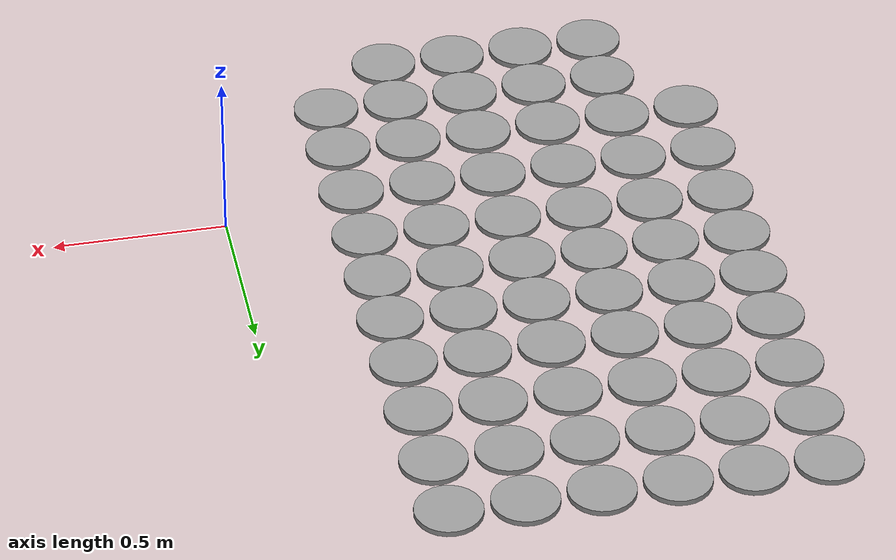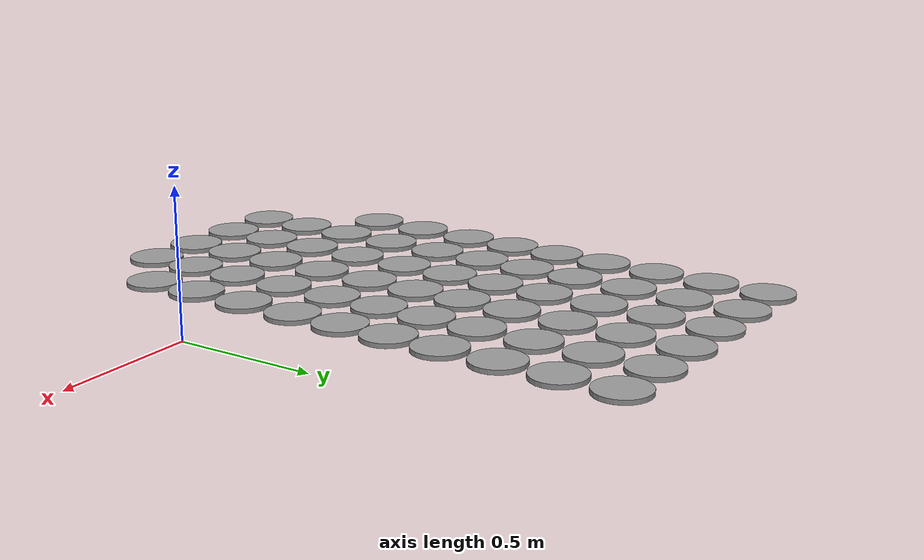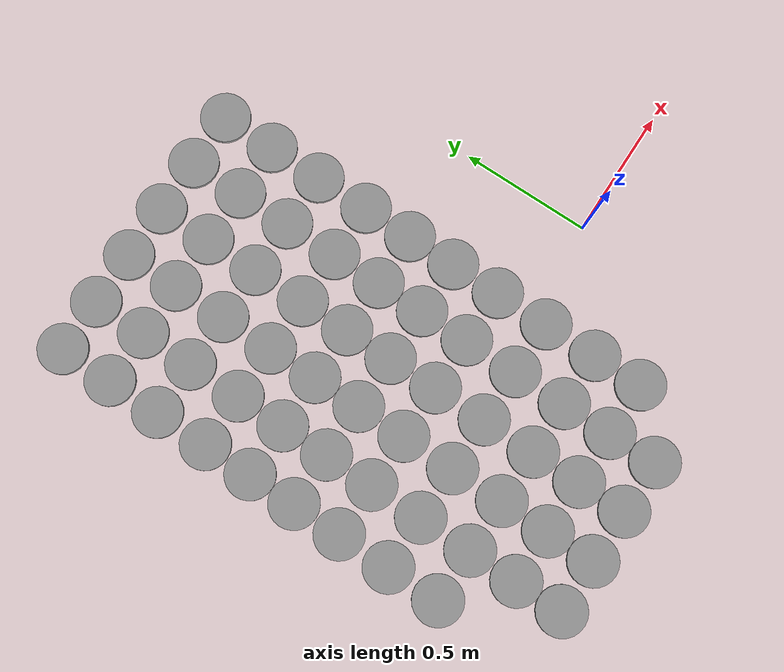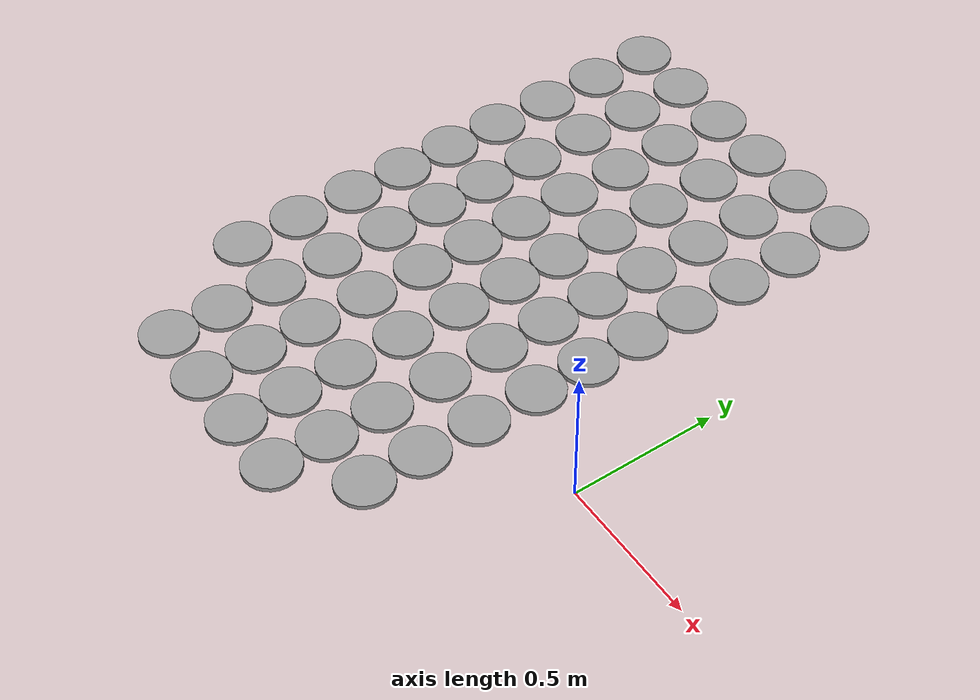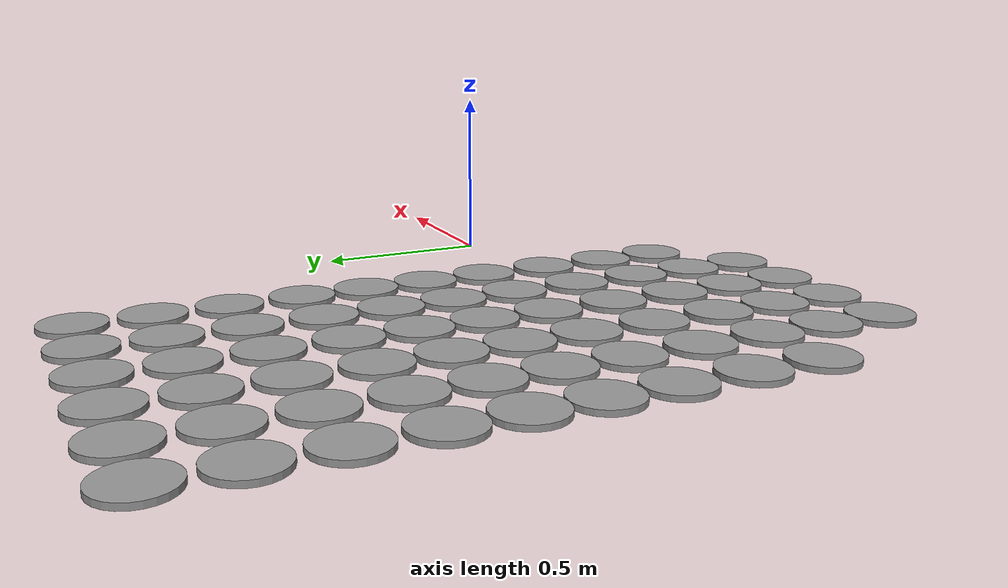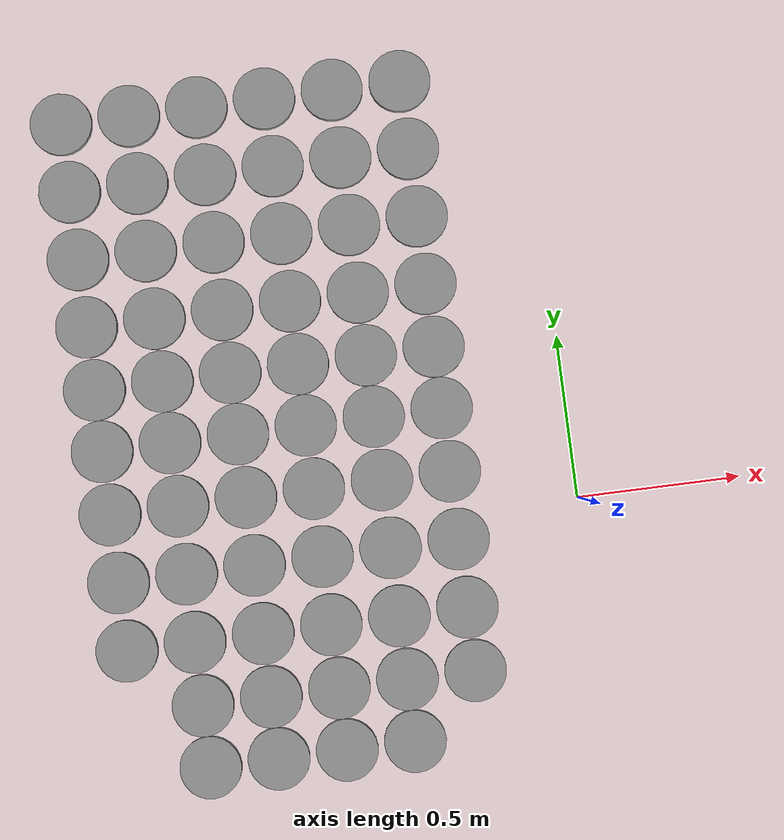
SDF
<sdf version="1.6">
 <world name="default">
  <model name="unit_cylinder_clone_85">
   <pose>-1.43 0.515077 0.008111 0 -0 0</pose>
   <link name="link">
    <inertial>
     <mass>1</mass>
     <inertia><ixx>0.145833</ixx><ixy>0</ixy><ixz>0</ixz><iyy>0.145833</iyy><iyz>0</iyz><izz>0.125</izz></inertia>
    </inertial>
    <collision name="collision">
     <geometry><cylinder><radius>0.0950718</radius><length>0.0162339</length></cylinder></geometry>
     <max_contacts>5</max_contacts>
    </collision>
    <visual name="visual">
     <geometry><cylinder><radius>0.0950718</radius><length>0.0162339</length></cylinder></geometry>
     <material>
      <script><name>Gazebo/Grey</name><uri>file://media/materials/scripts/gazebo.material</uri></script>
     </material>
    </visual>
   </link>
  </model>
  <model name="unit_cylinder_clone_86">
   <pose>-1.43 0.71 0.008111 0 -0 0</pose>
   <link name="link">
    <inertial>
     <mass>1</mass>
     <inertia><ixx>0.145833</ixx><ixy>0</ixy><ixz>0</ixz><iyy>0.145833</iyy><iyz>0</iyz><izz>0.125</izz></inertia>
    </inertial>
    <collision name="collision">
     <geometry><cylinder><radius>0.0950718</radius><length>0.0162339</length></cylinder></geometry>
     <max_contacts>5</max_contacts>
    </collision>
    <visual name="visual">
     <geometry><cylinder><radius>0.0950718</radius><length>0.0162339</length></cylinder></geometry>
     <material>
      <script><name>Gazebo/Grey</name><uri>file://media/materials/scripts/gazebo.material</uri></script>
     </material>
    </visual>
   </link>
  </model>
  <model name="unit_cylinder_clone_87">
   <pose>-1.43 0.92 0.008111 0 -0 0</pose>
   <link name="link">
    <inertial>
     <mass>1</mass>
     <inertia><ixx>0.145833</ixx><ixy>0</ixy><ixz>0</ixz><iyy>0.145833</iyy><iyz>0</iyz><izz>0.125</izz></inertia>
    </inertial>
    <collision name="collision">
     <geometry><cylinder><radius>0.0950718</radius><length>0.0162339</length></cylinder></geometry>
     <max_contacts>5</max_contacts>
    </collision>
    <visual name="visual">
     <geometry><cylinder><radius>0.0950718</radius><length>0.0162339</length></cylinder></geometry>
     <material>
      <script><name>Gazebo/Grey</name><uri>file://media/materials/scripts/gazebo.material</uri></script>
     </material>
    </visual>
   </link>
  </model>
  <model name="unit_cylinder_clone_88">
   <pose>-1.43 1.13 0.008111 0 -0 0</pose>
   <link name="link">
    <inertial>
     <mass>1</mass>
     <inertia><ixx>0.145833</ixx><ixy>0</ixy><ixz>0</ixz><iyy>0.145833</iyy><iyz>0</iyz><izz>0.125</izz></inertia>
    </inertial>
    <collision name="collision">
     <geometry><cylinder><radius>0.0950718</radius><length>0.0162339</length></cylinder></geometry>
     <max_contacts>5</max_contacts>
    </collision>
    <visual name="visual">
     <geometry><cylinder><radius>0.0950718</radius><length>0.0162339</length></cylinder></geometry>
     <material>
      <script><name>Gazebo/Grey</name><uri>file://media/materials/scripts/gazebo.material</uri></script>
     </material>
    </visual>
   </link>
  </model>
  <model name="unit_cylinder_clone_89">
   <pose>-1.43 1.34 0.008111 0 -0 0</pose>
   <link name="link">
    <inertial>
     <mass>1</mass>
     <inertia><ixx>0.145833</ixx><ixy>0</ixy><ixz>0</ixz><iyy>0.145833</iyy><iyz>0</iyz><izz>0.125</izz></inertia>
    </inertial>
    <collision name="collision">
     <geometry><cylinder><radius>0.0950718</radius><length>0.0162339</length></cylinder></geometry>
     <max_contacts>5</max_contacts>
    </collision>
    <visual name="visual">
     <geometry><cylinder><radius>0.0950718</radius><length>0.0162339</length></cylinder></geometry>
     <material>
      <script><name>Gazebo/Grey</name><uri>file://media/materials/scripts/gazebo.material</uri></script>
     </material>
    </visual>
   </link>
  </model>
  <model name="unit_cylinder_clone_90">
   <pose>-1.22 0.515077 0.008111 0 -0 0</pose>
   <link name="link">
    <inertial>
     <mass>1</mass>
     <inertia><ixx>0.145833</ixx><ixy>0</ixy><ixz>0</ixz><iyy>0.145833</iyy><iyz>0</iyz><izz>0.125</izz></inertia>
    </inertial>
    <collision name="collision">
     <geometry><cylinder><radius>0.0950718</radius><length>0.0162339</length></cylinder></geometry>
     <max_contacts>5</max_contacts>
    </collision>
    <visual name="visual">
     <geometry><cylinder><radius>0.0950718</radius><length>0.0162339</length></cylinder></geometry>
     <material>
      <script><name>Gazebo/Grey</name><uri>file://media/materials/scripts/gazebo.material</uri></script>
     </material>
    </visual>
   </link>
  </model>
  <model name="unit_cylinder_clone_91">
   <pose>-1.22 0.71 0.008111 0 -0 0</pose>
   <link name="link">
    <inertial>
     <mass>1</mass>
     <inertia><ixx>0.145833</ixx><ixy>0</ixy><ixz>0</ixz><iyy>0.145833</iyy><iyz>0</iyz><izz>0.125</izz></inertia>
    </inertial>
    <collision name="collision">
     <geometry><cylinder><radius>0.0950718</radius><length>0.0162339</length></cylinder></geometry>
     <max_contacts>5</max_contacts>
    </collision>
    <visual name="visual">
     <geometry><cylinder><radius>0.0950718</radius><length>0.0162339</length></cylinder></geometry>
     <material>
      <script><name>Gazebo/Grey</name><uri>file://media/materials/scripts/gazebo.material</uri></script>
     </material>
    </visual>
   </link>
  </model>
  <model name="unit_cylinder_clone_92">
   <pose>-1.22 0.92 0.008111 0 -0 0</pose>
   <link name="link">
    <inertial>
     <mass>1</mass>
     <inertia><ixx>0.145833</ixx><ixy>0</ixy><ixz>0</ixz><iyy>0.145833</iyy><iyz>0</iyz><izz>0.125</izz></inertia>
    </inertial>
    <collision name="collision">
     <geometry><cylinder><radius>0.0950718</radius><length>0.0162339</length></cylinder></geometry>
     <max_contacts>5</max_contacts>
    </collision>
    <visual name="visual">
     <geometry><cylinder><radius>0.0950718</radius><length>0.0162339</length></cylinder></geometry>
     <material>
      <script><name>Gazebo/Grey</name><uri>file://media/materials/scripts/gazebo.material</uri></script>
     </material>
    </visual>
   </link>
  </model>
  <model name="unit_cylinder_clone_93">
   <pose>-1.22 1.13 0.008111 0 -0 0</pose>
   <link name="link">
    <inertial>
     <mass>1</mass>
     <inertia><ixx>0.145833</ixx><ixy>0</ixy><ixz>0</ixz><iyy>0.145833</iyy><iyz>0</iyz><izz>0.125</izz></inertia>
    </inertial>
    <collision name="collision">
     <geometry><cylinder><radius>0.0950718</radius><length>0.0162339</length></cylinder></geometry>
     <max_contacts>5</max_contacts>
    </collision>
    <visual name="visual">
     <geometry><cylinder><radius>0.0950718</radius><length>0.0162339</length></cylinder></geometry>
     <material>
      <script><name>Gazebo/Grey</name><uri>file://media/materials/scripts/gazebo.material</uri></script>
     </material>
    </visual>
   </link>
  </model>
  <model name="unit_cylinder_clone_94">
   <pose>-1.22 1.34 0.008111 0 -0 0</pose>
   <link name="link">
    <inertial>
     <mass>1</mass>
     <inertia><ixx>0.145833</ixx><ixy>0</ixy><ixz>0</ixz><iyy>0.145833</iyy><iyz>0</iyz><izz>0.125</izz></inertia>
    </inertial>
    <collision name="collision">
     <geometry><cylinder><radius>0.0950718</radius><length>0.0162339</length></cylinder></geometry>
     <max_contacts>5</max_contacts>
    </collision>
    <visual name="visual">
     <geometry><cylinder><radius>0.0950718</radius><length>0.0162339</length></cylinder></geometry>
     <material>
      <script><name>Gazebo/Grey</name><uri>file://media/materials/scripts/gazebo.material</uri></script>
     </material>
    </visual>
   </link>
  </model>
  <model name="unit_cylinder_clone_95">
   <pose>-1.01 0.515077 0.008111 0 -0 0</pose>
   <link name="link">
    <inertial>
     <mass>1</mass>
     <inertia><ixx>0.145833</ixx><ixy>0</ixy><ixz>0</ixz><iyy>0.145833</iyy><iyz>0</iyz><izz>0.125</izz></inertia>
    </inertial>
    <collision name="collision">
     <geometry><cylinder><radius>0.0950718</radius><length>0.0162339</length></cylinder></geometry>
     <max_contacts>5</max_contacts>
    </collision>
    <visual name="visual">
     <geometry><cylinder><radius>0.0950718</radius><length>0.0162339</length></cylinder></geometry>
     <material>
      <script><name>Gazebo/Grey</name><uri>file://media/materials/scripts/gazebo.material</uri></script>
     </material>
    </visual>
   </link>
  </model>
  <model name="unit_cylinder_clone_96">
   <pose>-1.01 0.71 0.008111 0 -0 0</pose>
   <link name="link">
    <inertial>
     <mass>1</mass>
     <inertia><ixx>0.145833</ixx><ixy>0</ixy><ixz>0</ixz><iyy>0.145833</iyy><iyz>0</iyz><izz>0.125</izz></inertia>
    </inertial>
    <collision name="collision">
     <geometry><cylinder><radius>0.0950718</radius><length>0.0162339</length></cylinder></geometry>
     <max_contacts>5</max_contacts>
    </collision>
    <visual name="visual">
     <geometry><cylinder><radius>0.0950718</radius><length>0.0162339</length></cylinder></geometry>
     <material>
      <script><name>Gazebo/Grey</name><uri>file://media/materials/scripts/gazebo.material</uri></script>
     </material>
    </visual>
   </link>
  </model>
  <model name="unit_cylinder_clone_97">
   <pose>-1.01 0.92 0.008111 0 -0 0</pose>
   <link name="link">
    <inertial>
     <mass>1</mass>
     <inertia><ixx>0.145833</ixx><ixy>0</ixy><ixz>0</ixz><iyy>0.145833</iyy><iyz>0</iyz><izz>0.125</izz></inertia>
    </inertial>
    <collision name="collision">
     <geometry><cylinder><radius>0.0950718</radius><length>0.0162339</length></cylinder></geometry>
     <max_contacts>5</max_contacts>
    </collision>
    <visual name="visual">
     <geometry><cylinder><radius>0.0950718</radius><length>0.0162339</length></cylinder></geometry>
     <material>
      <script><name>Gazebo/Grey</name><uri>file://media/materials/scripts/gazebo.material</uri></script>
     </material>
    </visual>
   </link>
  </model>
  <model name="unit_cylinder_clone_98">
   <pose>-1.01 1.13 0.008111 0 -0 0</pose>
   <link name="link">
    <inertial>
     <mass>1</mass>
     <inertia><ixx>0.145833</ixx><ixy>0</ixy><ixz>0</ixz><iyy>0.145833</iyy><iyz>0</iyz><izz>0.125</izz></inertia>
    </inertial>
    <collision name="collision">
     <geometry><cylinder><radius>0.0950718</radius><length>0.0162339</length></cylinder></geometry>
     <max_contacts>5</max_contacts>
    </collision>
    <visual name="visual">
     <geometry><cylinder><radius>0.0950718</radius><length>0.0162339</length></cylinder></geometry>
     <material>
      <script><name>Gazebo/Grey</name><uri>file://media/materials/scripts/gazebo.material</uri></script>
     </material>
    </visual>
   </link>
  </model>
  <model name="unit_cylinder_clone_99">
   <pose>-1.01 1.34 0.008111 0 -0 0</pose>
   <link name="link">
    <inertial>
     <mass>1</mass>
     <inertia><ixx>0.145833</ixx><ixy>0</ixy><ixz>0</ixz><iyy>0.145833</iyy><iyz>0</iyz><izz>0.125</izz></inertia>
    </inertial>
    <collision name="collision">
     <geometry><cylinder><radius>0.0950718</radius><length>0.0162339</length></cylinder></geometry>
     <max_contacts>5</max_contacts>
    </collision>
    <visual name="visual">
     <geometry><cylinder><radius>0.0950718</radius><length>0.0162339</length></cylinder></geometry>
     <material>
      <script><name>Gazebo/Grey</name><uri>file://media/materials/scripts/gazebo.material</uri></script>
     </material>
    </visual>
   </link>
  </model>
  <model name="unit_cylinder_clone_100">
   <pose>-0.8 0.515077 0.008111 0 -0 0</pose>
   <link name="link">
    <inertial>
     <mass>1</mass>
     <inertia><ixx>0.145833</ixx><ixy>0</ixy><ixz>0</ixz><iyy>0.145833</iyy><iyz>0</iyz><izz>0.125</izz></inertia>
    </inertial>
    <collision name="collision">
     <geometry><cylinder><radius>0.0950718</radius><length>0.0162339</length></cylinder></geometry>
     <max_contacts>5</max_contacts>
    </collision>
    <visual name="visual">
     <geometry><cylinder><radius>0.0950718</radius><length>0.0162339</length></cylinder></geometry>
     <material>
      <script><name>Gazebo/Grey</name><uri>file://media/materials/scripts/gazebo.material</uri></script>
     </material>
    </visual>
   </link>
  </model>
  <model name="unit_cylinder_clone_101">
   <pose>-0.8 0.71 0.008111 0 -0 0</pose>
   <link name="link">
    <inertial>
     <mass>1</mass>
     <inertia><ixx>0.145833</ixx><ixy>0</ixy><ixz>0</ixz><iyy>0.145833</iyy><iyz>0</iyz><izz>0.125</izz></inertia>
    </inertial>
    <collision name="collision">
     <geometry><cylinder><radius>0.0950718</radius><length>0.0162339</length></cylinder></geometry>
     <max_contacts>5</max_contacts>
    </collision>
    <visual name="visual">
     <geometry><cylinder><radius>0.0950718</radius><length>0.0162339</length></cylinder></geometry>
     <material>
      <script><name>Gazebo/Grey</name><uri>file://media/materials/scripts/gazebo.material</uri></script>
     </material>
    </visual>
   </link>
  </model>
  <model name="unit_cylinder_clone_102">
   <pose>-0.8 0.92 0.008111 0 -0 0</pose>
   <link name="link">
    <inertial>
     <mass>1</mass>
     <inertia><ixx>0.145833</ixx><ixy>0</ixy><ixz>0</ixz><iyy>0.145833</iyy><iyz>0</iyz><izz>0.125</izz></inertia>
    </inertial>
    <collision name="collision">
     <geometry><cylinder><radius>0.0950718</radius><length>0.0162339</length></cylinder></geometry>
     <max_contacts>5</max_contacts>
    </collision>
    <visual name="visual">
     <geometry><cylinder><radius>0.0950718</radius><length>0.0162339</length></cylinder></geometry>
     <material>
      <script><name>Gazebo/Grey</name><uri>file://media/materials/scripts/gazebo.material</uri></script>
     </material>
    </visual>
   </link>
  </model>
  <model name="unit_cylinder_clone_103">
   <pose>-0.8 1.13 0.008111 0 -0 0</pose>
   <link name="link">
    <inertial>
     <mass>1</mass>
     <inertia><ixx>0.145833</ixx><ixy>0</ixy><ixz>0</ixz><iyy>0.145833</iyy><iyz>0</iyz><izz>0.125</izz></inertia>
    </inertial>
    <collision name="collision">
     <geometry><cylinder><radius>0.0950718</radius><length>0.0162339</length></cylinder></geometry>
     <max_contacts>5</max_contacts>
    </collision>
    <visual name="visual">
     <geometry><cylinder><radius>0.0950718</radius><length>0.0162339</length></cylinder></geometry>
     <material>
      <script><name>Gazebo/Grey</name><uri>file://media/materials/scripts/gazebo.material</uri></script>
     </material>
    </visual>
   </link>
  </model>
  <model name="unit_cylinder_clone_104">
   <pose>-0.8 1.34 0.008111 0 -0 0</pose>
   <link name="link">
    <inertial>
     <mass>1</mass>
     <inertia><ixx>0.145833</ixx><ixy>0</ixy><ixz>0</ixz><iyy>0.145833</iyy><iyz>0</iyz><izz>0.125</izz></inertia>
    </inertial>
    <collision name="collision">
     <geometry><cylinder><radius>0.0950718</radius><length>0.0162339</length></cylinder></geometry>
     <max_contacts>5</max_contacts>
    </collision>
    <visual name="visual">
     <geometry><cylinder><radius>0.0950718</radius><length>0.0162339</length></cylinder></geometry>
     <material>
      <script><name>Gazebo/Grey</name><uri>file://media/materials/scripts/gazebo.material</uri></script>
     </material>
    </visual>
   </link>
  </model>
  <model name="unit_cylinder_clone_105">
   <pose>-0.59 0.515077 0.008111 0 -0 0</pose>
   <link name="link">
    <inertial>
     <mass>1</mass>
     <inertia><ixx>0.145833</ixx><ixy>0</ixy><ixz>0</ixz><iyy>0.145833</iyy><iyz>0</iyz><izz>0.125</izz></inertia>
    </inertial>
    <collision name="collision">
     <geometry><cylinder><radius>0.0950718</radius><length>0.0162339</length></cylinder></geometry>
     <max_contacts>5</max_contacts>
    </collision>
    <visual name="visual">
     <geometry><cylinder><radius>0.0950718</radius><length>0.0162339</length></cylinder></geometry>
     <material>
      <script><name>Gazebo/Grey</name><uri>file://media/materials/scripts/gazebo.material</uri></script>
     </material>
    </visual>
   </link>
  </model>
  <model name="unit_cylinder_clone_106">
   <pose>-0.59 0.71 0.008111 0 -0 0</pose>
   <link name="link">
    <inertial>
     <mass>1</mass>
     <inertia><ixx>0.145833</ixx><ixy>0</ixy><ixz>0</ixz><iyy>0.145833</iyy><iyz>0</iyz><izz>0.125</izz></inertia>
    </inertial>
    <collision name="collision">
     <geometry><cylinder><radius>0.0950718</radius><length>0.0162339</length></cylinder></geometry>
     <max_contacts>5</max_contacts>
    </collision>
    <visual name="visual">
     <geometry><cylinder><radius>0.0950718</radius><length>0.0162339</length></cylinder></geometry>
     <material>
      <script><name>Gazebo/Grey</name><uri>file://media/materials/scripts/gazebo.material</uri></script>
     </material>
    </visual>
   </link>
  </model>
  <model name="unit_cylinder_clone_107">
   <pose>-0.59 0.92 0.008111 0 -0 0</pose>
   <link name="link">
    <inertial>
     <mass>1</mass>
     <inertia><ixx>0.145833</ixx><ixy>0</ixy><ixz>0</ixz><iyy>0.145833</iyy><iyz>0</iyz><izz>0.125</izz></inertia>
    </inertial>
    <collision name="collision">
     <geometry><cylinder><radius>0.0950718</radius><length>0.0162339</length></cylinder></geometry>
     <max_contacts>5</max_contacts>
    </collision>
    <visual name="visual">
     <geometry><cylinder><radius>0.0950718</radius><length>0.0162339</length></cylinder></geometry>
     <material>
      <script><name>Gazebo/Grey</name><uri>file://media/materials/scripts/gazebo.material</uri></script>
     </material>
    </visual>
   </link>
  </model>
  <model name="unit_cylinder_clone_108">
   <pose>-0.59 1.13 0.008111 0 -0 0</pose>
   <link name="link">
    <inertial>
     <mass>1</mass>
     <inertia><ixx>0.145833</ixx><ixy>0</ixy><ixz>0</ixz><iyy>0.145833</iyy><iyz>0</iyz><izz>0.125</izz></inertia>
    </inertial>
    <collision name="collision">
     <geometry><cylinder><radius>0.0950718</radius><length>0.0162339</length></cylinder></geometry>
     <max_contacts>5</max_contacts>
    </collision>
    <visual name="visual">
     <geometry><cylinder><radius>0.0950718</radius><length>0.0162339</length></cylinder></geometry>
     <material>
      <script><name>Gazebo/Grey</name><uri>file://media/materials/scripts/gazebo.material</uri></script>
     </material>
    </visual>
   </link>
  </model>
  <model name="unit_cylinder_clone_109">
   <pose>-0.59 1.34 0.008111 0 -0 0</pose>
   <link name="link">
    <inertial>
     <mass>1</mass>
     <inertia><ixx>0.145833</ixx><ixy>0</ixy><ixz>0</ixz><iyy>0.145833</iyy><iyz>0</iyz><izz>0.125</izz></inertia>
    </inertial>
    <collision name="collision">
     <geometry><cylinder><radius>0.0950718</radius><length>0.0162339</length></cylinder></geometry>
     <max_contacts>5</max_contacts>
    </collision>
    <visual name="visual">
     <geometry><cylinder><radius>0.0950718</radius><length>0.0162339</length></cylinder></geometry>
     <material>
      <script><name>Gazebo/Grey</name><uri>file://media/materials/scripts/gazebo.material</uri></script>
     </material>
    </visual>
   </link>
  </model>
  <model name="unit_cylinder_clone_110">
   <pose>-0.38 0.515077 0.008111 0 -0 0</pose>
   <link name="link">
    <inertial>
     <mass>1</mass>
     <inertia><ixx>0.145833</ixx><ixy>0</ixy><ixz>0</ixz><iyy>0.145833</iyy><iyz>0</iyz><izz>0.125</izz></inertia>
    </inertial>
    <collision name="collision">
     <geometry><cylinder><radius>0.0950718</radius><length>0.0162339</length></cylinder></geometry>
     <max_contacts>5</max_contacts>
    </collision>
    <visual name="visual">
     <geometry><cylinder><radius>0.0950718</radius><length>0.0162339</length></cylinder></geometry>
     <material>
      <script><name>Gazebo/Grey</name><uri>file://media/materials/scripts/gazebo.material</uri></script>
     </material>
    </visual>
   </link>
  </model>
  <model name="unit_cylinder_clone_111">
   <pose>-0.38 0.71 0.008111 0 -0 0</pose>
   <link name="link">
    <inertial>
     <mass>1</mass>
     <inertia><ixx>0.145833</ixx><ixy>0</ixy><ixz>0</ixz><iyy>0.145833</iyy><iyz>0</iyz><izz>0.125</izz></inertia>
    </inertial>
    <collision name="collision">
     <geometry><cylinder><radius>0.0950718</radius><length>0.0162339</length></cylinder></geometry>
     <max_contacts>5</max_contacts>
    </collision>
    <visual name="visual">
     <geometry><cylinder><radius>0.0950718</radius><length>0.0162339</length></cylinder></geometry>
     <material>
      <script><name>Gazebo/Grey</name><uri>file://media/materials/scripts/gazebo.material</uri></script>
     </material>
    </visual>
   </link>
  </model>
  <model name="unit_cylinder_clone_112">
   <pose>-0.38 0.92 0.008111 0 -0 0</pose>
   <link name="link">
    <inertial>
     <mass>1</mass>
     <inertia><ixx>0.145833</ixx><ixy>0</ixy><ixz>0</ixz><iyy>0.145833</iyy><iyz>0</iyz><izz>0.125</izz></inertia>
    </inertial>
    <collision name="collision">
     <geometry><cylinder><radius>0.0950718</radius><length>0.0162339</length></cylinder></geometry>
     <max_contacts>5</max_contacts>
    </collision>
    <visual name="visual">
     <geometry><cylinder><radius>0.0950718</radius><length>0.0162339</length></cylinder></geometry>
     <material>
      <script><name>Gazebo/Grey</name><uri>file://media/materials/scripts/gazebo.material</uri></script>
     </material>
    </visual>
   </link>
  </model>
  <model name="unit_cylinder_clone_113">
   <pose>-0.38 1.13 0.008111 0 -0 0</pose>
   <link name="link">
    <inertial>
     <mass>1</mass>
     <inertia><ixx>0.145833</ixx><ixy>0</ixy><ixz>0</ixz><iyy>0.145833</iyy><iyz>0</iyz><izz>0.125</izz></inertia>
    </inertial>
    <collision name="collision">
     <geometry><cylinder><radius>0.0950718</radius><length>0.0162339</length></cylinder></geometry>
     <max_contacts>5</max_contacts>
    </collision>
    <visual name="visual">
     <geometry><cylinder><radius>0.0950718</radius><length>0.0162339</length></cylinder></geometry>
     <material>
      <script><name>Gazebo/Grey</name><uri>file://media/materials/scripts/gazebo.material</uri></script>
     </material>
    </visual>
   </link>
  </model>
  <model name="unit_cylinder_clone_114">
   <pose>-0.38 1.34 0.008111 0 -0 0</pose>
   <link name="link">
    <inertial>
     <mass>1</mass>
     <inertia><ixx>0.145833</ixx><ixy>0</ixy><ixz>0</ixz><iyy>0.145833</iyy><iyz>0</iyz><izz>0.125</izz></inertia>
    </inertial>
    <collision name="collision">
     <geometry><cylinder><radius>0.0950718</radius><length>0.0162339</length></cylinder></geometry>
     <max_contacts>5</max_contacts>
    </collision>
    <visual name="visual">
     <geometry><cylinder><radius>0.0950718</radius><length>0.0162339</length></cylinder></geometry>
     <material>
      <script><name>Gazebo/Grey</name><uri>file://media/materials/scripts/gazebo.material</uri></script>
     </material>
    </visual>
   </link>
  </model>
  <model name="unit_cylinder_clone_336">
   <pose>-1.43 -0.29 0.008111 0 -0 0</pose>
   <link name="link">
    <inertial>
     <mass>1</mass>
     <inertia><ixx>0.145833</ixx><ixy>0</ixy><ixz>0</ixz><iyy>0.145833</iyy><iyz>0</iyz><izz>0.125</izz></inertia>
    </inertial>
    <collision name="collision">
     <geometry><cylinder><radius>0.0950718</radius><length>0.0162339</length></cylinder></geometry>
     <max_contacts>5</max_contacts>
    </collision>
    <visual name="visual">
     <geometry><cylinder><radius>0.0950718</radius><length>0.0162339</length></cylinder></geometry>
     <material>
      <script><name>Gazebo/Grey</name><uri>file://media/materials/scripts/gazebo.material</uri></script>
     </material>
    </visual>
   </link>
  </model>
  <model name="unit_cylinder_clone_337">
   <pose>-1.43 -0.08 0.008111 0 -0 0</pose>
   <link name="link">
    <inertial>
     <mass>1</mass>
     <inertia><ixx>0.145833</ixx><ixy>0</ixy><ixz>0</ixz><iyy>0.145833</iyy><iyz>0</iyz><izz>0.125</izz></inertia>
    </inertial>
    <collision name="collision">
     <geometry><cylinder><radius>0.0950718</radius><length>0.0162339</length></cylinder></geometry>
     <max_contacts>5</max_contacts>
    </collision>
    <visual name="visual">
     <geometry><cylinder><radius>0.0950718</radius><length>0.0162339</length></cylinder></geometry>
     <material>
      <script><name>Gazebo/Grey</name><uri>file://media/materials/scripts/gazebo.material</uri></script>
     </material>
    </visual>
   </link>
  </model>
  <model name="unit_cylinder_clone_338">
   <pose>-1.43 0.13 0.008111 0 -0 0</pose>
   <link name="link">
    <inertial>
     <mass>1</mass>
     <inertia><ixx>0.145833</ixx><ixy>0</ixy><ixz>0</ixz><iyy>0.145833</iyy><iyz>0</iyz><izz>0.125</izz></inertia>
    </inertial>
    <collision name="collision">
     <geometry><cylinder><radius>0.0950718</radius><length>0.0162339</length></cylinder></geometry>
     <max_contacts>5</max_contacts>
    </collision>
    <visual name="visual">
     <geometry><cylinder><radius>0.0950718</radius><length>0.0162339</length></cylinder></geometry>
     <material>
      <script><name>Gazebo/Grey</name><uri>file://media/materials/scripts/gazebo.material</uri></script>
     </material>
    </visual>
   </link>
  </model>
  <model name="unit_cylinder_clone_339">
   <pose>-1.43 0.324923 0.008111 0 -0 0</pose>
   <link name="link">
    <inertial>
     <mass>1</mass>
     <inertia><ixx>0.145833</ixx><ixy>0</ixy><ixz>0</ixz><iyy>0.145833</iyy><iyz>0</iyz><izz>0.125</izz></inertia>
    </inertial>
    <collision name="collision">
     <geometry><cylinder><radius>0.0950718</radius><length>0.0162339</length></cylinder></geometry>
     <max_contacts>5</max_contacts>
    </collision>
    <visual name="visual">
     <geometry><cylinder><radius>0.0950718</radius><length>0.0162339</length></cylinder></geometry>
     <material>
      <script><name>Gazebo/Grey</name><uri>file://media/materials/scripts/gazebo.material</uri></script>
     </material>
    </visual>
   </link>
  </model>
  <model name="unit_cylinder_clone_340">
   <pose>-1.22 -0.484923 0.008111 0 -0 0</pose>
   <link name="link">
    <inertial>
     <mass>1</mass>
     <inertia><ixx>0.145833</ixx><ixy>0</ixy><ixz>0</ixz><iyy>0.145833</iyy><iyz>0</iyz><izz>0.125</izz></inertia>
    </inertial>
    <collision name="collision">
     <geometry><cylinder><radius>0.0950718</radius><length>0.0162339</length></cylinder></geometry>
     <max_contacts>5</max_contacts>
    </collision>
    <visual name="visual">
     <geometry><cylinder><radius>0.0950718</radius><length>0.0162339</length></cylinder></geometry>
     <material>
      <script><name>Gazebo/Grey</name><uri>file://media/materials/scripts/gazebo.material</uri></script>
     </material>
    </visual>
   </link>
  </model>
  <model name="unit_cylinder_clone_341">
   <pose>-1.22 -0.29 0.008111 0 -0 0</pose>
   <link name="link">
    <inertial>
     <mass>1</mass>
     <inertia><ixx>0.145833</ixx><ixy>0</ixy><ixz>0</ixz><iyy>0.145833</iyy><iyz>0</iyz><izz>0.125</izz></inertia>
    </inertial>
    <collision name="collision">
     <geometry><cylinder><radius>0.0950718</radius><length>0.0162339</length></cylinder></geometry>
     <max_contacts>5</max_contacts>
    </collision>
    <visual name="visual">
     <geometry><cylinder><radius>0.0950718</radius><length>0.0162339</length></cylinder></geometry>
     <material>
      <script><name>Gazebo/Grey</name><uri>file://media/materials/scripts/gazebo.material</uri></script>
     </material>
    </visual>
   </link>
  </model>
  <model name="unit_cylinder_clone_342">
   <pose>-1.22 -0.08 0.008111 0 -0 0</pose>
   <link name="link">
    <inertial>
     <mass>1</mass>
     <inertia><ixx>0.145833</ixx><ixy>0</ixy><ixz>0</ixz><iyy>0.145833</iyy><iyz>0</iyz><izz>0.125</izz></inertia>
    </inertial>
    <collision name="collision">
     <geometry><cylinder><radius>0.0950718</radius><length>0.0162339</length></cylinder></geometry>
     <max_contacts>5</max_contacts>
    </collision>
    <visual name="visual">
     <geometry><cylinder><radius>0.0950718</radius><length>0.0162339</length></cylinder></geometry>
     <material>
      <script><name>Gazebo/Grey</name><uri>file://media/materials/scripts/gazebo.material</uri></script>
     </material>
    </visual>
   </link>
  </model>
  <model name="unit_cylinder_clone_343">
   <pose>-1.22 0.13 0.008111 0 -0 0</pose>
   <link name="link">
    <inertial>
     <mass>1</mass>
     <inertia><ixx>0.145833</ixx><ixy>0</ixy><ixz>0</ixz><iyy>0.145833</iyy><iyz>0</iyz><izz>0.125</izz></inertia>
    </inertial>
    <collision name="collision">
     <geometry><cylinder><radius>0.0950718</radius><length>0.0162339</length></cylinder></geometry>
     <max_contacts>5</max_contacts>
    </collision>
    <visual name="visual">
     <geometry><cylinder><radius>0.0950718</radius><length>0.0162339</length></cylinder></geometry>
     <material>
      <script><name>Gazebo/Grey</name><uri>file://media/materials/scripts/gazebo.material</uri></script>
     </material>
    </visual>
   </link>
  </model>
  <model name="unit_cylinder_clone_344">
   <pose>-1.22 0.324923 0.008111 0 -0 0</pose>
   <link name="link">
    <inertial>
     <mass>1</mass>
     <inertia><ixx>0.145833</ixx><ixy>0</ixy><ixz>0</ixz><iyy>0.145833</iyy><iyz>0</iyz><izz>0.125</izz></inertia>
    </inertial>
    <collision name="collision">
     <geometry><cylinder><radius>0.0950718</radius><length>0.0162339</length></cylinder></geometry>
     <max_contacts>5</max_contacts>
    </collision>
    <visual name="visual">
     <geometry><cylinder><radius>0.0950718</radius><length>0.0162339</length></cylinder></geometry>
     <material>
      <script><name>Gazebo/Grey</name><uri>file://media/materials/scripts/gazebo.material</uri></script>
     </material>
    </visual>
   </link>
  </model>
  <model name="unit_cylinder_clone_345">
   <pose>-1.01 -0.484923 0.008111 0 -0 0</pose>
   <link name="link">
    <inertial>
     <mass>1</mass>
     <inertia><ixx>0.145833</ixx><ixy>0</ixy><ixz>0</ixz><iyy>0.145833</iyy><iyz>0</iyz><izz>0.125</izz></inertia>
    </inertial>
    <collision name="collision">
     <geometry><cylinder><radius>0.0950718</radius><length>0.0162339</length></cylinder></geometry>
     <max_contacts>5</max_contacts>
    </collision>
    <visual name="visual">
     <geometry><cylinder><radius>0.0950718</radius><length>0.0162339</length></cylinder></geometry>
     <material>
      <script><name>Gazebo/Grey</name><uri>file://media/materials/scripts/gazebo.material</uri></script>
     </material>
    </visual>
   </link>
  </model>
  <model name="unit_cylinder_clone_346">
   <pose>-1.01 -0.29 0.008111 0 -0 0</pose>
   <link name="link">
    <inertial>
     <mass>1</mass>
     <inertia><ixx>0.145833</ixx><ixy>0</ixy><ixz>0</ixz><iyy>0.145833</iyy><iyz>0</iyz><izz>0.125</izz></inertia>
    </inertial>
    <collision name="collision">
     <geometry><cylinder><radius>0.0950718</radius><length>0.0162339</length></cylinder></geometry>
     <max_contacts>5</max_contacts>
    </collision>
    <visual name="visual">
     <geometry><cylinder><radius>0.0950718</radius><length>0.0162339</length></cylinder></geometry>
     <material>
      <script><name>Gazebo/Grey</name><uri>file://media/materials/scripts/gazebo.material</uri></script>
     </material>
    </visual>
   </link>
  </model>
  <model name="unit_cylinder_clone_347">
   <pose>-1.01 -0.08 0.008111 0 -0 0</pose>
   <link name="link">
    <inertial>
     <mass>1</mass>
     <inertia><ixx>0.145833</ixx><ixy>0</ixy><ixz>0</ixz><iyy>0.145833</iyy><iyz>0</iyz><izz>0.125</izz></inertia>
    </inertial>
    <collision name="collision">
     <geometry><cylinder><radius>0.0950718</radius><length>0.0162339</length></cylinder></geometry>
     <max_contacts>5</max_contacts>
    </collision>
    <visual name="visual">
     <geometry><cylinder><radius>0.0950718</radius><length>0.0162339</length></cylinder></geometry>
     <material>
      <script><name>Gazebo/Grey</name><uri>file://media/materials/scripts/gazebo.material</uri></script>
     </material>
    </visual>
   </link>
  </model>
  <model name="unit_cylinder_clone_348">
   <pose>-1.01 0.13 0.008111 0 -0 0</pose>
   <link name="link">
    <inertial>
     <mass>1</mass>
     <inertia><ixx>0.145833</ixx><ixy>0</ixy><ixz>0</ixz><iyy>0.145833</iyy><iyz>0</iyz><izz>0.125</izz></inertia>
    </inertial>
    <collision name="collision">
     <geometry><cylinder><radius>0.0950718</radius><length>0.0162339</length></cylinder></geometry>
     <max_contacts>5</max_contacts>
    </collision>
    <visual name="visual">
     <geometry><cylinder><radius>0.0950718</radius><length>0.0162339</length></cylinder></geometry>
     <material>
      <script><name>Gazebo/Grey</name><uri>file://media/materials/scripts/gazebo.material</uri></script>
     </material>
    </visual>
   </link>
  </model>
  <model name="unit_cylinder_clone_349">
   <pose>-1.01 0.324923 0.008111 0 -0 0</pose>
   <link name="link">
    <inertial>
     <mass>1</mass>
     <inertia><ixx>0.145833</ixx><ixy>0</ixy><ixz>0</ixz><iyy>0.145833</iyy><iyz>0</iyz><izz>0.125</izz></inertia>
    </inertial>
    <collision name="collision">
     <geometry><cylinder><radius>0.0950718</radius><length>0.0162339</length></cylinder></geometry>
     <max_contacts>5</max_contacts>
    </collision>
    <visual name="visual">
     <geometry><cylinder><radius>0.0950718</radius><length>0.0162339</length></cylinder></geometry>
     <material>
      <script><name>Gazebo/Grey</name><uri>file://media/materials/scripts/gazebo.material</uri></script>
     </material>
    </visual>
   </link>
  </model>
  <model name="unit_cylinder_clone_350">
   <pose>-0.8 -0.484923 0.008111 0 -0 0</pose>
   <link name="link">
    <inertial>
     <mass>1</mass>
     <inertia><ixx>0.145833</ixx><ixy>0</ixy><ixz>0</ixz><iyy>0.145833</iyy><iyz>0</iyz><izz>0.125</izz></inertia>
    </inertial>
    <collision name="collision">
     <geometry><cylinder><radius>0.0950718</radius><length>0.0162339</length></cylinder></geometry>
     <max_contacts>5</max_contacts>
    </collision>
    <visual name="visual">
     <geometry><cylinder><radius>0.0950718</radius><length>0.0162339</length></cylinder></geometry>
     <material>
      <script><name>Gazebo/Grey</name><uri>file://media/materials/scripts/gazebo.material</uri></script>
     </material>
    </visual>
   </link>
  </model>
  <model name="unit_cylinder_clone_351">
   <pose>-0.8 -0.29 0.008111 0 -0 0</pose>
   <link name="link">
    <inertial>
     <mass>1</mass>
     <inertia><ixx>0.145833</ixx><ixy>0</ixy><ixz>0</ixz><iyy>0.145833</iyy><iyz>0</iyz><izz>0.125</izz></inertia>
    </inertial>
    <collision name="collision">
     <geometry><cylinder><radius>0.0950718</radius><length>0.0162339</length></cylinder></geometry>
     <max_contacts>5</max_contacts>
    </collision>
    <visual name="visual">
     <geometry><cylinder><radius>0.0950718</radius><length>0.0162339</length></cylinder></geometry>
     <material>
      <script><name>Gazebo/Grey</name><uri>file://media/materials/scripts/gazebo.material</uri></script>
     </material>
    </visual>
   </link>
  </model>
  <model name="unit_cylinder_clone_352">
   <pose>-0.8 -0.08 0.008111 0 -0 0</pose>
   <link name="link">
    <inertial>
     <mass>1</mass>
     <inertia><ixx>0.145833</ixx><ixy>0</ixy><ixz>0</ixz><iyy>0.145833</iyy><iyz>0</iyz><izz>0.125</izz></inertia>
    </inertial>
    <collision name="collision">
     <geometry><cylinder><radius>0.0950718</radius><length>0.0162339</length></cylinder></geometry>
     <max_contacts>5</max_contacts>
    </collision>
    <visual name="visual">
     <geometry><cylinder><radius>0.0950718</radius><length>0.0162339</length></cylinder></geometry>
     <material>
      <script><name>Gazebo/Grey</name><uri>file://media/materials/scripts/gazebo.material</uri></script>
     </material>
    </visual>
   </link>
  </model>
  <model name="unit_cylinder_clone_353">
   <pose>-0.8 0.13 0.008111 0 -0 0</pose>
   <link name="link">
    <inertial>
     <mass>1</mass>
     <inertia><ixx>0.145833</ixx><ixy>0</ixy><ixz>0</ixz><iyy>0.145833</iyy><iyz>0</iyz><izz>0.125</izz></inertia>
    </inertial>
    <collision name="collision">
     <geometry><cylinder><radius>0.0950718</radius><length>0.0162339</length></cylinder></geometry>
     <max_contacts>5</max_contacts>
    </collision>
    <visual name="visual">
     <geometry><cylinder><radius>0.0950718</radius><length>0.0162339</length></cylinder></geometry>
     <material>
      <script><name>Gazebo/Grey</name><uri>file://media/materials/scripts/gazebo.material</uri></script>
     </material>
    </visual>
   </link>
  </model>
  <model name="unit_cylinder_clone_354">
   <pose>-0.8 0.324923 0.008111 0 -0 0</pose>
   <link name="link">
    <inertial>
     <mass>1</mass>
     <inertia><ixx>0.145833</ixx><ixy>0</ixy><ixz>0</ixz><iyy>0.145833</iyy><iyz>0</iyz><izz>0.125</izz></inertia>
    </inertial>
    <collision name="collision">
     <geometry><cylinder><radius>0.0950718</radius><length>0.0162339</length></cylinder></geometry>
     <max_contacts>5</max_contacts>
    </collision>
    <visual name="visual">
     <geometry><cylinder><radius>0.0950718</radius><length>0.0162339</length></cylinder></geometry>
     <material>
      <script><name>Gazebo/Grey</name><uri>file://media/materials/scripts/gazebo.material</uri></script>
     </material>
    </visual>
   </link>
  </model>
  <model name="unit_cylinder_clone_355">
   <pose>-0.59 -0.484923 0.008111 0 -0 0</pose>
   <link name="link">
    <inertial>
     <mass>1</mass>
     <inertia><ixx>0.145833</ixx><ixy>0</ixy><ixz>0</ixz><iyy>0.145833</iyy><iyz>0</iyz><izz>0.125</izz></inertia>
    </inertial>
    <collision name="collision">
     <geometry><cylinder><radius>0.0950718</radius><length>0.0162339</length></cylinder></geometry>
     <max_contacts>5</max_contacts>
    </collision>
    <visual name="visual">
     <geometry><cylinder><radius>0.0950718</radius><length>0.0162339</length></cylinder></geometry>
     <material>
      <script><name>Gazebo/Grey</name><uri>file://media/materials/scripts/gazebo.material</uri></script>
     </material>
    </visual>
   </link>
  </model>
  <model name="unit_cylinder_clone_356">
   <pose>-0.59 -0.29 0.008111 0 -0 0</pose>
   <link name="link">
    <inertial>
     <mass>1</mass>
     <inertia><ixx>0.145833</ixx><ixy>0</ixy><ixz>0</ixz><iyy>0.145833</iyy><iyz>0</iyz><izz>0.125</izz></inertia>
    </inertial>
    <collision name="collision">
     <geometry><cylinder><radius>0.0950718</radius><length>0.0162339</length></cylinder></geometry>
     <max_contacts>5</max_contacts>
    </collision>
    <visual name="visual">
     <geometry><cylinder><radius>0.0950718</radius><length>0.0162339</length></cylinder></geometry>
     <material>
      <script><name>Gazebo/Grey</name><uri>file://media/materials/scripts/gazebo.material</uri></script>
     </material>
    </visual>
   </link>
  </model>
  <model name="unit_cylinder_clone_357">
   <pose>-0.59 -0.08 0.008111 0 -0 0</pose>
   <link name="link">
    <inertial>
     <mass>1</mass>
     <inertia><ixx>0.145833</ixx><ixy>0</ixy><ixz>0</ixz><iyy>0.145833</iyy><iyz>0</iyz><izz>0.125</izz></inertia>
    </inertial>
    <collision name="collision">
     <geometry><cylinder><radius>0.0950718</radius><length>0.0162339</length></cylinder></geometry>
     <max_contacts>5</max_contacts>
    </collision>
    <visual name="visual">
     <geometry><cylinder><radius>0.0950718</radius><length>0.0162339</length></cylinder></geometry>
     <material>
      <script><name>Gazebo/Grey</name><uri>file://media/materials/scripts/gazebo.material</uri></script>
     </material>
    </visual>
   </link>
  </model>
  <model name="unit_cylinder_clone_358">
   <pose>-0.59 0.13 0.008111 0 -0 0</pose>
   <link name="link">
    <inertial>
     <mass>1</mass>
     <inertia><ixx>0.145833</ixx><ixy>0</ixy><ixz>0</ixz><iyy>0.145833</iyy><iyz>0</iyz><izz>0.125</izz></inertia>
    </inertial>
    <collision name="collision">
     <geometry><cylinder><radius>0.0950718</radius><length>0.0162339</length></cylinder></geometry>
     <max_contacts>5</max_contacts>
    </collision>
    <visual name="visual">
     <geometry><cylinder><radius>0.0950718</radius><length>0.0162339</length></cylinder></geometry>
     <material>
      <script><name>Gazebo/Grey</name><uri>file://media/materials/scripts/gazebo.material</uri></script>
     </material>
    </visual>
   </link>
  </model>
  <model name="unit_cylinder_clone_359">
   <pose>-0.59 0.324923 0.008111 0 -0 0</pose>
   <link name="link">
    <inertial>
     <mass>1</mass>
     <inertia><ixx>0.145833</ixx><ixy>0</ixy><ixz>0</ixz><iyy>0.145833</iyy><iyz>0</iyz><izz>0.125</izz></inertia>
    </inertial>
    <collision name="collision">
     <geometry><cylinder><radius>0.0950718</radius><length>0.0162339</length></cylinder></geometry>
     <max_contacts>5</max_contacts>
    </collision>
    <visual name="visual">
     <geometry><cylinder><radius>0.0950718</radius><length>0.0162339</length></cylinder></geometry>
     <material>
      <script><name>Gazebo/Grey</name><uri>file://media/materials/scripts/gazebo.material</uri></script>
     </material>
    </visual>
   </link>
  </model>
  <model name="unit_cylinder_clone_360">
   <pose>-0.38 -0.484923 0.008111 0 -0 0</pose>
   <link name="link">
    <inertial>
     <mass>1</mass>
     <inertia><ixx>0.145833</ixx><ixy>0</ixy><ixz>0</ixz><iyy>0.145833</iyy><iyz>0</iyz><izz>0.125</izz></inertia>
    </inertial>
    <collision name="collision">
     <geometry><cylinder><radius>0.0950718</radius><length>0.0162339</length></cylinder></geometry>
     <max_contacts>5</max_contacts>
    </collision>
    <visual name="visual">
     <geometry><cylinder><radius>0.0950718</radius><length>0.0162339</length></cylinder></geometry>
     <material>
      <script><name>Gazebo/Grey</name><uri>file://media/materials/scripts/gazebo.material</uri></script>
     </material>
    </visual>
   </link>
  </model>
  <model name="unit_cylinder_clone_361">
   <pose>-0.38 -0.29 0.008111 0 -0 0</pose>
   <link name="link">
    <inertial>
     <mass>1</mass>
     <inertia><ixx>0.145833</ixx><ixy>0</ixy><ixz>0</ixz><iyy>0.145833</iyy><iyz>0</iyz><izz>0.125</izz></inertia>
    </inertial>
    <collision name="collision">
     <geometry><cylinder><radius>0.0950718</radius><length>0.0162339</length></cylinder></geometry>
     <max_contacts>5</max_contacts>
    </collision>
    <visual name="visual">
     <geometry><cylinder><radius>0.0950718</radius><length>0.0162339</length></cylinder></geometry>
     <material>
      <script><name>Gazebo/Grey</name><uri>file://media/materials/scripts/gazebo.material</uri></script>
     </material>
    </visual>
   </link>
  </model>
  <model name="unit_cylinder_clone_362">
   <pose>-0.38 -0.08 0.008111 0 -0 0</pose>
   <link name="link">
    <inertial>
     <mass>1</mass>
     <inertia><ixx>0.145833</ixx><ixy>0</ixy><ixz>0</ixz><iyy>0.145833</iyy><iyz>0</iyz><izz>0.125</izz></inertia>
    </inertial>
    <collision name="collision">
     <geometry><cylinder><radius>0.0950718</radius><length>0.0162339</length></cylinder></geometry>
     <max_contacts>5</max_contacts>
    </collision>
    <visual name="visual">
     <geometry><cylinder><radius>0.0950718</radius><length>0.0162339</length></cylinder></geometry>
     <material>
      <script><name>Gazebo/Grey</name><uri>file://media/materials/scripts/gazebo.material</uri></script>
     </material>
    </visual>
   </link>
  </model>
  <model name="unit_cylinder_clone_363">
   <pose>-0.38 0.13 0.008111 0 -0 0</pose>
   <link name="link">
    <inertial>
     <mass>1</mass>
     <inertia><ixx>0.145833</ixx><ixy>0</ixy><ixz>0</ixz><iyy>0.145833</iyy><iyz>0</iyz><izz>0.125</izz></inertia>
    </inertial>
    <collision name="collision">
     <geometry><cylinder><radius>0.0950718</radius><length>0.0162339</length></cylinder></geometry>
     <max_contacts>5</max_contacts>
    </collision>
    <visual name="visual">
     <geometry><cylinder><radius>0.0950718</radius><length>0.0162339</length></cylinder></geometry>
     <material>
      <script><name>Gazebo/Grey</name><uri>file://media/materials/scripts/gazebo.material</uri></script>
     </material>
    </visual>
   </link>
  </model>
  <model name="unit_cylinder_clone_364">
   <pose>-0.38 0.324923 0.008111 0 -0 0</pose>
   <link name="link">
    <inertial>
     <mass>1</mass>
     <inertia><ixx>0.145833</ixx><ixy>0</ixy><ixz>0</ixz><iyy>0.145833</iyy><iyz>0</iyz><izz>0.125</izz></inertia>
    </inertial>
    <collision name="collision">
     <geometry><cylinder><radius>0.0950718</radius><length>0.0162339</length></cylinder></geometry>
     <max_contacts>5</max_contacts>
    </collision>
    <visual name="visual">
     <geometry><cylinder><radius>0.0950718</radius><length>0.0162339</length></cylinder></geometry>
     <material>
      <script><name>Gazebo/Grey</name><uri>file://media/materials/scripts/gazebo.material</uri></script>
     </material>
    </visual>
   </link>
  </model>
  <model name="unit_cylinder_clone_594">
   <pose>-1.22 -0.675077 0.008111 0 -0 0</pose>
   <link name="link">
    <inertial>
     <mass>1</mass>
     <inertia><ixx>0.145833</ixx><ixy>0</ixy><ixz>0</ixz><iyy>0.145833</iyy><iyz>0</iyz><izz>0.125</izz></inertia>
    </inertial>
    <collision name="collision">
     <geometry><cylinder><radius>0.0950718</radius><length>0.0162339</length></cylinder></geometry>
     <max_contacts>5</max_contacts>
    </collision>
    <visual name="visual">
     <geometry><cylinder><radius>0.0950718</radius><length>0.0162339</length></cylinder></geometry>
     <material>
      <script><name>Gazebo/Grey</name><uri>file://media/materials/scripts/gazebo.material</uri></script>
     </material>
    </visual>
   </link>
  </model>
  <model name="unit_cylinder_clone_599">
   <pose>-1.01 -0.675077 0.008111 0 -0 0</pose>
   <link name="link">
    <inertial>
     <mass>1</mass>
     <inertia><ixx>0.145833</ixx><ixy>0</ixy><ixz>0</ixz><iyy>0.145833</iyy><iyz>0</iyz><izz>0.125</izz></inertia>
    </inertial>
    <collision name="collision">
     <geometry><cylinder><radius>0.0950718</radius><length>0.0162339</length></cylinder></geometry>
     <max_contacts>5</max_contacts>
    </collision>
    <visual name="visual">
     <geometry><cylinder><radius>0.0950718</radius><length>0.0162339</length></cylinder></geometry>
     <material>
      <script><name>Gazebo/Grey</name><uri>file://media/materials/scripts/gazebo.material</uri></script>
     </material>
    </visual>
   </link>
  </model>
  <model name="unit_cylinder_clone_604">
   <pose>-0.8 -0.675077 0.008111 0 -0 0</pose>
   <link name="link">
    <inertial>
     <mass>1</mass>
     <inertia><ixx>0.145833</ixx><ixy>0</ixy><ixz>0</ixz><iyy>0.145833</iyy><iyz>0</iyz><izz>0.125</izz></inertia>
    </inertial>
    <collision name="collision">
     <geometry><cylinder><radius>0.0950718</radius><length>0.0162339</length></cylinder></geometry>
     <max_contacts>5</max_contacts>
    </collision>
    <visual name="visual">
     <geometry><cylinder><radius>0.0950718</radius><length>0.0162339</length></cylinder></geometry>
     <material>
      <script><name>Gazebo/Grey</name><uri>file://media/materials/scripts/gazebo.material</uri></script>
     </material>
    </visual>
   </link>
  </model>
  <model name="unit_cylinder_clone_609">
   <pose>-0.59 -0.675077 0.008111 0 -0 0</pose>
   <link name="link">
    <inertial>
     <mass>1</mass>
     <inertia><ixx>0.145833</ixx><ixy>0</ixy><ixz>0</ixz><iyy>0.145833</iyy><iyz>0</iyz><izz>0.125</izz></inertia>
    </inertial>
    <collision name="collision">
     <geometry><cylinder><radius>0.0950718</radius><length>0.0162339</length></cylinder></geometry>
     <max_contacts>5</max_contacts>
    </collision>
    <visual name="visual">
     <geometry><cylinder><radius>0.0950718</radius><length>0.0162339</length></cylinder></geometry>
     <material>
      <script><name>Gazebo/Grey</name><uri>file://media/materials/scripts/gazebo.material</uri></script>
     </material>
    </visual>
   </link>
  </model>
 </world>
</sdf>
